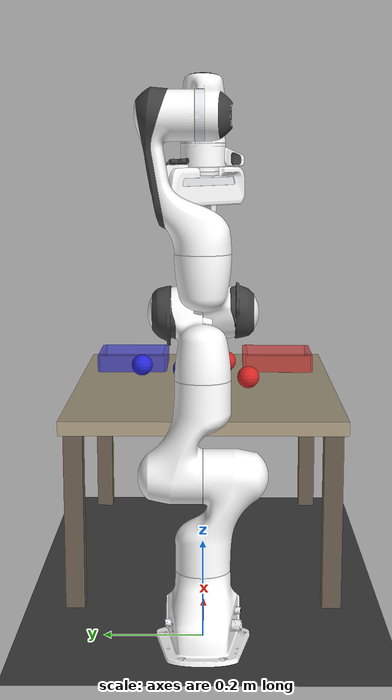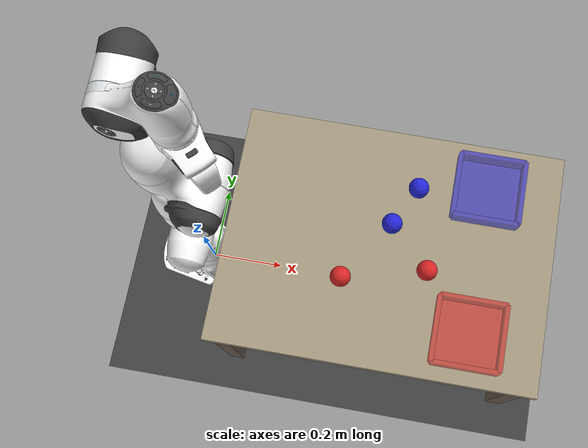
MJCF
<mujoco model="panda_sort_scene">

  <compiler meshdir="franka_emika_panda/assets" angle="radian" autolimits="true"/>

  <option timestep="0.002" iterations="50" ls_iterations="50"
          integrator="implicitfast" cone="elliptic">
    <flag eulerdamp="disable"/>
  </option>

  <visual>
    <headlight diffuse="0.6 0.6 0.6" ambient="0.3 0.3 0.3" specular="0 0 0"/>
    <global azimuth="120" elevation="-20"/>
  </visual>

  <default>
    <default class="panda">
      <material specular="0.5" shininess="0.25"/>
      <joint armature="0.1" damping="1" axis="0 0 1" range="-2.8973 2.8973"/>
      <general dyntype="none" biastype="affine" ctrlrange="-2.8973 2.8973" forcerange="-87 87"/>
      <default class="finger">
        <joint axis="0 1 0" type="slide" range="0 0.04"/>
      </default>
      <default class="visual">
        <geom type="mesh" contype="0" conaffinity="0" group="2"/>
      </default>
      <default class="collision">
        <geom group="3" type="mesh" condim="3"/>
        <default class="fingertip_pad_collision_1">
          <geom type="box" size="0.0085 0.004 0.0085" pos="0 0.0055 0.0445"
                condim="3" friction="0.8 0.8 0.8"/>
        </default>
        <default class="fingertip_pad_collision_2">
          <geom type="box" size="0.003 0.002 0.003" pos="0.0055 0.002 0.05"
                condim="3" friction="0.8 0.8 0.8"/>
        </default>
        <default class="fingertip_pad_collision_3">
          <geom type="box" size="0.003 0.002 0.003" pos="-0.0055 0.002 0.05"
                condim="3" friction="0.8 0.8 0.8"/>
        </default>
        <default class="fingertip_pad_collision_4">
          <geom type="box" size="0.003 0.002 0.0035" pos="0.0055 0.002 0.0395"
                condim="3" friction="0.8 0.8 0.8"/>
        </default>
        <default class="fingertip_pad_collision_5">
          <geom type="box" size="0.003 0.002 0.0035" pos="-0.0055 0.002 0.0395"
                condim="3" friction="0.8 0.8 0.8"/>
        </default>
      </default>
    </default>
  </default>

  <asset>
    <!-- Panda materials -->
    <material class="panda" name="white" rgba="1 1 1 1"/>
    <material class="panda" name="off_white" rgba="0.901961 0.921569 0.929412 1"/>
    <material class="panda" name="black" rgba="0.25 0.25 0.25 1"/>
    <material class="panda" name="green" rgba="0 1 0 1"/>
    <material class="panda" name="light_blue" rgba="0.039216 0.541176 0.780392 1"/>

    <!-- Collision meshes -->
    <mesh name="link0_c" file="link0.stl"/>
    <mesh name="link1_c" file="link1.stl"/>
    <mesh name="link2_c" file="link2.stl"/>
    <mesh name="link3_c" file="link3.stl"/>
    <mesh name="link4_c" file="link4.stl"/>
    <mesh name="link5_c0" file="link5_collision_0.obj"/>
    <mesh name="link5_c1" file="link5_collision_1.obj"/>
    <mesh name="link5_c2" file="link5_collision_2.obj"/>
    <mesh name="link6_c" file="link6.stl"/>
    <mesh name="link7_c" file="link7.stl"/>
    <mesh name="hand_c" file="hand.stl"/>

    <!-- Visual meshes -->
    <mesh file="link0_0.obj"/><mesh file="link0_1.obj"/><mesh file="link0_2.obj"/>
    <mesh file="link0_3.obj"/><mesh file="link0_4.obj"/><mesh file="link0_5.obj"/>
    <mesh file="link0_7.obj"/><mesh file="link0_8.obj"/><mesh file="link0_9.obj"/>
    <mesh file="link0_10.obj"/><mesh file="link0_11.obj"/>
    <mesh file="link1.obj"/><mesh file="link2.obj"/>
    <mesh file="link3_0.obj"/><mesh file="link3_1.obj"/><mesh file="link3_2.obj"/><mesh file="link3_3.obj"/>
    <mesh file="link4_0.obj"/><mesh file="link4_1.obj"/><mesh file="link4_2.obj"/><mesh file="link4_3.obj"/>
    <mesh file="link5_0.obj"/><mesh file="link5_1.obj"/><mesh file="link5_2.obj"/>
    <mesh file="link6_0.obj"/><mesh file="link6_1.obj"/><mesh file="link6_2.obj"/><mesh file="link6_3.obj"/>
    <mesh file="link6_4.obj"/><mesh file="link6_5.obj"/><mesh file="link6_6.obj"/><mesh file="link6_7.obj"/>
    <mesh file="link6_8.obj"/><mesh file="link6_9.obj"/><mesh file="link6_10.obj"/><mesh file="link6_11.obj"/>
    <mesh file="link6_12.obj"/><mesh file="link6_13.obj"/><mesh file="link6_14.obj"/>
    <mesh file="link6_15.obj"/><mesh file="link6_16.obj"/>
    <mesh file="link7_0.obj"/><mesh file="link7_1.obj"/><mesh file="link7_2.obj"/><mesh file="link7_3.obj"/>
    <mesh file="link7_4.obj"/><mesh file="link7_5.obj"/><mesh file="link7_6.obj"/><mesh file="link7_7.obj"/>
    <mesh file="hand_0.obj"/><mesh file="hand_1.obj"/><mesh file="hand_2.obj"/>
    <mesh file="hand_3.obj"/><mesh file="hand_4.obj"/>
    <mesh file="finger_0.obj"/><mesh file="finger_1.obj"/>

    <!-- Scene materials -->
    <texture type="2d" name="floor_tex" builtin="checker"
             rgb1="0.3 0.3 0.3" rgb2="0.2 0.2 0.2" width="512" height="512"/>
    <material name="floor_mat" texture="floor_tex" texrepeat="4 4" reflectance="0.1"/>
    <texture type="2d" name="table_tex" builtin="flat"
             rgb1="0.65 0.60 0.50" width="512" height="512"/>
    <material name="table_mat" texture="table_tex" specular="0.1" shininess="0.1"/>
    <material name="bin_red"  rgba="0.85 0.15 0.15 0.6"/>
    <material name="bin_blue" rgba="0.15 0.15 0.85 0.6"/>
  </asset>

  <worldbody>
    <!-- Lighting -->
    <light name="top" pos="0 0 2" mode="trackcom"/>
    <light name="main_light" pos="0 0 2.5" dir="0 0 -1"
           diffuse="0.8 0.8 0.8" specular="0.2 0.2 0.2" castshadow="true"/>
    <light name="fill_light" pos="1.0 1.0 2.0" dir="-0.5 -0.5 -1"
           diffuse="0.3 0.3 0.3" specular="0 0 0"/>

    <!-- Floor -->
    <geom name="floor" type="plane" size="2 2 0.05"
          material="floor_mat" contype="1" conaffinity="1"/>

    <!-- PANDA ROBOT -->
    <body name="link0" childclass="panda">
      <inertial mass="0.629769" pos="-0.041018 -0.00014 0.049974"
        fullinertia="0.00315 0.00388 0.004285 8.2904e-7 0.00015 8.2299e-6"/>
      <geom mesh="link0_0" material="off_white" class="visual"/>
      <geom mesh="link0_1" material="black" class="visual"/>
      <geom mesh="link0_2" material="off_white" class="visual"/>
      <geom mesh="link0_3" material="black" class="visual"/>
      <geom mesh="link0_4" material="off_white" class="visual"/>
      <geom mesh="link0_5" material="black" class="visual"/>
      <geom mesh="link0_7" material="white" class="visual"/>
      <geom mesh="link0_8" material="white" class="visual"/>
      <geom mesh="link0_9" material="black" class="visual"/>
      <geom mesh="link0_10" material="off_white" class="visual"/>
      <geom mesh="link0_11" material="white" class="visual"/>
      <geom mesh="link0_c" class="collision"/>
      <body name="link1" pos="0 0 0.333">
        <inertial mass="4.970684" pos="0.003875 0.002081 -0.04762"
          fullinertia="0.70337 0.70661 0.0091170 -0.00013900 0.0067720 0.019169"/>
        <joint name="joint1" damping="40"/>
        <geom material="white" mesh="link1" class="visual"/>
        <geom mesh="link1_c" class="collision"/>
        <body name="link2" quat="1 -1 0 0">
          <inertial mass="0.646926" pos="-0.003141 -0.02872 0.003495"
            fullinertia="0.0079620 2.8110e-2 2.5995e-2 -3.925e-3 1.0254e-2 7.04e-4"/>
          <joint name="joint2" range="-1.7628 1.7628" damping="40"/>
          <geom material="white" mesh="link2" class="visual"/>
          <geom mesh="link2_c" class="collision"/>
          <body name="link3" pos="0 -0.316 0" quat="1 1 0 0">
            <joint name="joint3" damping="40"/>
            <inertial mass="3.228604" pos="2.7518e-2 3.9252e-2 -6.6502e-2"
              fullinertia="3.7242e-2 3.6155e-2 1.083e-2 -4.761e-3 -1.1396e-2 -1.2805e-2"/>
            <geom mesh="link3_0" material="white" class="visual"/>
            <geom mesh="link3_1" material="white" class="visual"/>
            <geom mesh="link3_2" material="white" class="visual"/>
            <geom mesh="link3_3" material="black" class="visual"/>
            <geom mesh="link3_c" class="collision"/>
            <body name="link4" pos="0.0825 0 0" quat="1 1 0 0">
              <inertial mass="3.587895" pos="-5.317e-2 1.04419e-1 2.7454e-2"
                fullinertia="2.5853e-2 1.9552e-2 2.8323e-2 7.796e-3 -1.332e-3 8.641e-3"/>
              <joint name="joint4" range="-3.0718 -0.0698" damping="40"/>
              <geom mesh="link4_0" material="white" class="visual"/>
              <geom mesh="link4_1" material="white" class="visual"/>
              <geom mesh="link4_2" material="black" class="visual"/>
              <geom mesh="link4_3" material="white" class="visual"/>
              <geom mesh="link4_c" class="collision"/>
              <body name="link5" pos="-0.0825 0.384 0" quat="1 -1 0 0">
                <inertial mass="1.225946" pos="-1.1953e-2 4.1065e-2 -3.8437e-2"
                  fullinertia="3.5549e-2 2.9474e-2 8.627e-3 -2.117e-3 -4.037e-3 2.29e-4"/>
                <joint name="joint5" damping="2"/>
                <geom mesh="link5_0" material="black" class="visual"/>
                <geom mesh="link5_1" material="white" class="visual"/>
                <geom mesh="link5_2" material="white" class="visual"/>
                <geom mesh="link5_c0" class="collision"/>
                <geom mesh="link5_c1" class="collision"/>
                <geom mesh="link5_c2" class="collision"/>
                <body name="link6" quat="1 1 0 0">
                  <inertial mass="1.666555" pos="6.0149e-2 -1.4117e-2 -1.0517e-2"
                    fullinertia="1.964e-3 4.354e-3 5.433e-3 1.09e-4 -1.158e-3 3.41e-4"/>
                  <joint name="joint6" range="-0.0175 3.7525" damping="2"/>
                  <geom mesh="link6_0" material="off_white" class="visual"/>
                  <geom mesh="link6_1" material="white" class="visual"/>
                  <geom mesh="link6_2" material="black" class="visual"/>
                  <geom mesh="link6_3" material="white" class="visual"/>
                  <geom mesh="link6_4" material="white" class="visual"/>
                  <geom mesh="link6_5" material="white" class="visual"/>
                  <geom mesh="link6_6" material="white" class="visual"/>
                  <geom mesh="link6_7" material="light_blue" class="visual"/>
                  <geom mesh="link6_8" material="light_blue" class="visual"/>
                  <geom mesh="link6_9" material="black" class="visual"/>
                  <geom mesh="link6_10" material="black" class="visual"/>
                  <geom mesh="link6_11" material="white" class="visual"/>
                  <geom mesh="link6_12" material="green" class="visual"/>
                  <geom mesh="link6_13" material="white" class="visual"/>
                  <geom mesh="link6_14" material="black" class="visual"/>
                  <geom mesh="link6_15" material="black" class="visual"/>
                  <geom mesh="link6_16" material="white" class="visual"/>
                  <geom mesh="link6_c" class="collision"/>
                  <body name="link7" pos="0.088 0 0" quat="1 1 0 0">
                    <inertial mass="7.35522e-01" pos="1.0517e-2 -4.252e-3 6.1597e-2"
                      fullinertia="1.2516e-2 1.0027e-2 4.815e-3 -4.28e-4 -1.196e-3 -7.41e-4"/>
                    <joint name="joint7" damping="2"/>
                    <geom mesh="link7_0" material="white" class="visual"/>
                    <geom mesh="link7_1" material="black" class="visual"/>
                    <geom mesh="link7_2" material="black" class="visual"/>
                    <geom mesh="link7_3" material="black" class="visual"/>
                    <geom mesh="link7_4" material="black" class="visual"/>
                    <geom mesh="link7_5" material="black" class="visual"/>
                    <geom mesh="link7_6" material="black" class="visual"/>
                    <geom mesh="link7_7" material="white" class="visual"/>
                    <geom mesh="link7_c" class="collision"/>
                    <body name="hand" pos="0 0 0.107" quat="0.9238795 0 0 -0.3826834">
                      <inertial mass="0.73" pos="-0.01 0 0.03" diaginertia="0.001 0.0025 0.0017"/>
                      <geom mesh="hand_0" material="off_white" class="visual"/>
                      <geom mesh="hand_1" material="black" class="visual"/>
                      <geom mesh="hand_2" material="black" class="visual"/>
                      <geom mesh="hand_3" material="white" class="visual"/>
                      <geom mesh="hand_4" material="off_white" class="visual"/>
                      <geom mesh="hand_c" class="collision"/>

                      <!-- EE center — between the fingers, same as panda_mujoco_gym -->
                      <body name="ee_center_body" pos="0 0 0.105">
                        <site name="ee_center_site" size="0.01" group="3"/>
                      </body>

                      <!-- Old gripper site kept for backward compatibility -->
                      <site name="gripper" pos="0 0 0.1034"/>

                      <body name="left_finger" pos="0 0 0.0584">
                        <inertial mass="0.015" pos="0 0 0" diaginertia="2.375e-6 2.375e-6 7.5e-7"/>
                        <joint name="finger_joint1" class="finger" damping="10"/>
                        <geom mesh="finger_0" material="off_white" class="visual"/>
                        <geom mesh="finger_1" material="black" class="visual"/>
                        <geom mesh="finger_0" class="collision"/>
                        <geom class="fingertip_pad_collision_1"/>
                        <geom class="fingertip_pad_collision_2"/>
                        <geom class="fingertip_pad_collision_3"/>
                        <geom class="fingertip_pad_collision_4"/>
                        <geom class="fingertip_pad_collision_5"/>
                      </body>
                      <body name="right_finger" pos="0 0 0.0584" quat="0 0 0 1">
                        <inertial mass="0.015" pos="0 0 0" diaginertia="2.375e-6 2.375e-6 7.5e-7"/>
                        <joint name="finger_joint2" class="finger" damping="10"/>
                        <geom mesh="finger_0" material="off_white" class="visual"/>
                        <geom mesh="finger_1" material="black" class="visual"/>
                        <geom mesh="finger_0" class="collision"/>
                        <geom class="fingertip_pad_collision_1"/>
                        <geom class="fingertip_pad_collision_2"/>
                        <geom class="fingertip_pad_collision_3"/>
                        <geom class="fingertip_pad_collision_4"/>
                        <geom class="fingertip_pad_collision_5"/>
                      </body>
                    </body>
                  </body>
                </body>
              </body>
            </body>
          </body>
        </body>
      </body>
    </body>

    <!-- TABLE -->
    <body name="table" pos="0.5 0.0 0.0">
      <geom name="table_top" type="box" size="0.40 0.30 0.015"
            pos="0 0 0.405" material="table_mat"
            contype="1" conaffinity="1" friction="0.8 0.01 0.001"/>
      <geom name="leg_fl" type="box" size="0.02 0.02 0.195"
            pos="-0.37 -0.27 0.21" rgba="0.4 0.35 0.3 1"/>
      <geom name="leg_fr" type="box" size="0.02 0.02 0.195"
            pos="-0.37  0.27 0.21" rgba="0.4 0.35 0.3 1"/>
      <geom name="leg_bl" type="box" size="0.02 0.02 0.195"
            pos=" 0.37 -0.27 0.21" rgba="0.4 0.35 0.3 1"/>
      <geom name="leg_br" type="box" size="0.02 0.02 0.195"
            pos=" 0.37  0.27 0.21" rgba="0.4 0.35 0.3 1"/>
    </body>

    <!-- BINS -->

    <body name="bin_red" pos="0.72 -0.18 0.421">
      <geom name="bin_red_marker" type="box" size="0.08 0.08 0.001"
            material="bin_red" contype="0" conaffinity="0"/>
      <geom type="box" size="0.08 0.005 0.02" pos="0  0.08 0.02"
            material="bin_red" contype="1" conaffinity="1" friction="0.8 0.01 0.01"
            solimp="0.99 0.999 0.001" solref="0.01 1"/>
      <geom type="box" size="0.08 0.005 0.02" pos="0 -0.08 0.02"
            material="bin_red" contype="1" conaffinity="1" friction="0.8 0.01 0.01"
            solimp="0.99 0.999 0.001" solref="0.01 1"/>
      <geom type="box" size="0.005 0.08 0.02" pos=" 0.08 0 0.02"
            material="bin_red" contype="1" conaffinity="1" friction="0.8 0.01 0.01"
            solimp="0.99 0.999 0.001" solref="0.01 1"/>
      <geom type="box" size="0.005 0.08 0.02" pos="-0.08 0 0.02"
            material="bin_red" contype="1" conaffinity="1" friction="0.8 0.01 0.01"
            solimp="0.99 0.999 0.001" solref="0.01 1"/>
    </body>

    <body name="bin_blue" pos="0.72 0.18 0.421">
      <geom name="bin_blue_marker" type="box" size="0.08 0.08 0.001"
            material="bin_blue" contype="0" conaffinity="0"/>
      <geom type="box" size="0.08 0.005 0.02" pos="0  0.08 0.02"
            material="bin_blue" contype="1" conaffinity="1" friction="0.8 0.01 0.01"
            solimp="0.99 0.999 0.001" solref="0.01 1"/>
      <geom type="box" size="0.08 0.005 0.02" pos="0 -0.08 0.02"
            material="bin_blue" contype="1" conaffinity="1" friction="0.8 0.01 0.01"
            solimp="0.99 0.999 0.001" solref="0.01 1"/>
      <geom type="box" size="0.005 0.08 0.02" pos=" 0.08 0 0.02"
            material="bin_blue" contype="1" conaffinity="1" friction="0.8 0.01 0.01"
            solimp="0.99 0.999 0.001" solref="0.01 1"/>
      <geom type="box" size="0.005 0.08 0.02" pos="-0.08 0 0.02"
            material="bin_blue" contype="1" conaffinity="1" friction="0.8 0.01 0.01"
            solimp="0.99 0.999 0.001" solref="0.01 1"/>
    </body>

    <!-- BALLS -->

    <body name="ball0" pos="0.40 -0.10 0.455">
      <joint name="ball0_joint" type="free" damping="0.07"/>
      <geom name="ball0_geom" type="sphere" size="0.025"
            rgba="0.85 0.15 0.15 1" mass="0.05"
            friction="0.8 0.01 0.01" condim="6"
            solimp="0.99 0.999 0.001" solref="0.005 1"
            contype="1" conaffinity="1"/>
    </body>
    <body name="ball1" pos="0.50 0.05 0.455">
      <joint name="ball1_joint" type="free" damping="0.07"/>
      <geom name="ball1_geom" type="sphere" size="0.025"
            rgba="0.15 0.15 0.85 1" mass="0.05"
            friction="0.8 0.01 0.01" condim="6"
            solimp="0.99 0.999 0.001" solref="0.005 1"
            contype="1" conaffinity="1"/>
    </body>
    <body name="ball2" pos="0.60 -0.05 0.455">
      <joint name="ball2_joint" type="free" damping="0.07"/>
      <geom name="ball2_geom" type="sphere" size="0.025"
            rgba="0.85 0.15 0.15 1" mass="0.05"
            friction="0.8 0.01 0.01" condim="6"
            solimp="0.99 0.999 0.001" solref="0.005 1"
            contype="1" conaffinity="1"/>
    </body>
    <body name="ball3" pos="0.55 0.15 0.455">
      <joint name="ball3_joint" type="free" damping="0.07"/>
      <geom name="ball3_geom" type="sphere" size="0.025"
            rgba="0.15 0.15 0.85 1" mass="0.05"
            friction="0.8 0.01 0.01" condim="6"
            solimp="0.99 0.999 0.001" solref="0.005 1"
            contype="1" conaffinity="1"/>
    </body>

    <!-- CAMERAS -->

    <camera name="overhead_cam" pos="0.5 0.0 1.2"
            euler="0 0 3.14159" fovy="55"/>
    <camera name="side_cam" pos="-0.3 -0.8 0.8"
            xyaxes="1 0 0 0 0.5 1" fovy="45"/>
  </worldbody>

  <equality>
    <joint joint1="finger_joint1" joint2="finger_joint2"
           solimp="0.95 0.99 0.001" solref="0.005 1"/>
  </equality>

  <!-- ACTUATORS                                                         -->
  <!-- Arm joints: general actuators with high gains (affine bias).      -->
  <!--   - For OSC: env writes torques directly to data.qfrc_applied     -->
  <!--     and these actuators hold the arm at neutral (low activity)    -->
  <!-- Gripper: separate position actuators for both approaches          -->

  <actuator>
    <!-- Arm — high gain general actuators (same as panda_mujoco_gym) -->
    <general class="panda" name="actuator1" joint="joint1"
             gainprm="4500" biasprm="0 -4500 -450"/>
    <general class="panda" name="actuator2" joint="joint2"
             gainprm="4500" biasprm="0 -4500 -450" ctrlrange="-1.7628 1.7628"/>
    <general class="panda" name="actuator3" joint="joint3"
             gainprm="3500" biasprm="0 -3500 -350"/>
    <general class="panda" name="actuator4" joint="joint4"
             gainprm="3500" biasprm="0 -3500 -350" ctrlrange="-3.0718 -0.0698"/>
    <general class="panda" name="actuator5" joint="joint5"
             gainprm="2000" biasprm="0 -2000 -200" forcerange="-12 12"/>
    <general class="panda" name="actuator6" joint="joint6"
             gainprm="2000" biasprm="0 -2000 -200" forcerange="-12 12"
             ctrlrange="-0.0175 3.7525"/>
    <general class="panda" name="actuator7" joint="joint7"
             gainprm="2000" biasprm="0 -2000 -200" forcerange="-12 12"/>

    <!-- Gripper — proportional position control -->
    <general name="finger_actuator1" joint="finger_joint1" class="panda"
             gainprm="500 0 0" biasprm="0 -500 -10"
             forcerange="-120 120" ctrlrange="0 0.04"/>
    <general name="finger_actuator2" joint="finger_joint2" class="panda"
             gainprm="500 0 0" biasprm="0 -500 -10"
             forcerange="-120 120" ctrlrange="0 0.04"/>
  </actuator>

  <contact>
    <exclude body1="link0" body2="link1"/>
  </contact>

</mujoco>
